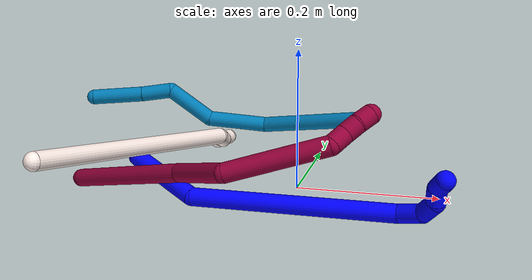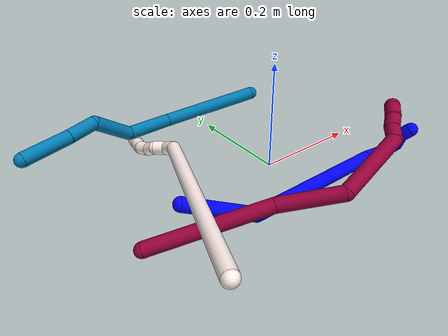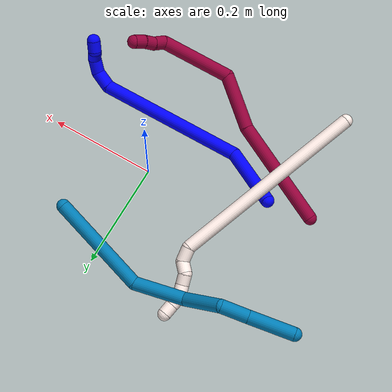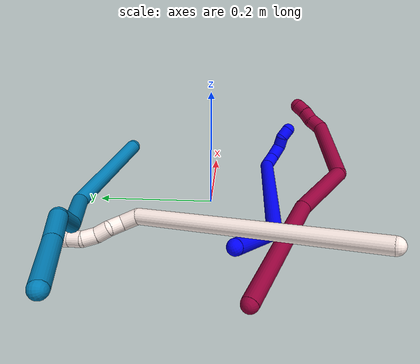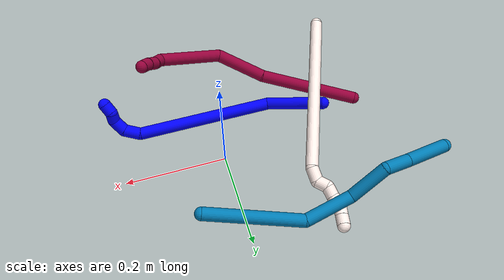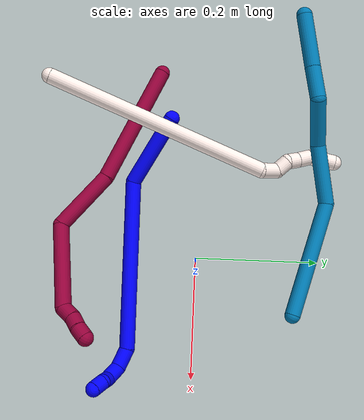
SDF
<sdf version="1.7">
 <world name="default">
  <model name="1">
   <static>0</static>
   <link name="1">
    <collision name="collision-cylinder-e_1_1_4">
     <pose>0.047107 0.006931 0.038579 -0.177769 0.876794 -0.083514</pose>
     <geometry><cylinder><radius>0.0125</radius><length>0.122563</length></cylinder></geometry>
     <surface>
      <friction><ode><mu>1.16</mu><mu2>1.16</mu2><slip1>0</slip1><slip2>0</slip2></ode></friction>
      <contact><ode><kp>1e+06</kp><kd>1</kd><max_vel>0</max_vel><min_depth>0.001</min_depth></ode></contact>
     </surface>
    </collision>
    <visual name="visual-cylinder-e_1_1_4">
     <pose>0.047107 0.006931 0.038579 -0.177769 0.876794 -0.083514</pose>
     <geometry><cylinder><radius>0.0125</radius><length>0.122563</length></cylinder></geometry>
     <material><ambient>0 0 1 1</ambient></material>
    </visual>
    <collision name="collision-cylinder-e_2_4_5">
     <pose>0.220745 -0.026907 0.110726 0.881973 1.17541 0.609327</pose>
     <geometry><cylinder><radius>0.0125</radius><length>0.27422</length></cylinder></geometry>
     <surface>
      <friction><ode><mu>1.16</mu><mu2>1.16</mu2><slip1>0</slip1><slip2>0</slip2></ode></friction>
      <contact><ode><kp>1e+06</kp><kd>1</kd><max_vel>0</max_vel><min_depth>0.001</min_depth></ode></contact>
     </surface>
    </collision>
    <visual name="visual-cylinder-e_2_4_5">
     <pose>0.220745 -0.026907 0.110726 0.881973 1.17541 0.609327</pose>
     <geometry><cylinder><radius>0.0125</radius><length>0.27422</length></cylinder></geometry>
     <material><ambient>0 0 1 1</ambient></material>
    </visual>
    <collision name="collision-cylinder-e_3_5_6">
     <pose>0.36348 -0.065157 0.147271 -0.702307 1.33463 -0.561995</pose>
     <geometry><cylinder><radius>0.0125</radius><length>0.033333</length></cylinder></geometry>
     <surface>
      <friction><ode><mu>1.16</mu><mu2>1.16</mu2><slip1>0</slip1><slip2>0</slip2></ode></friction>
      <contact><ode><kp>1e+06</kp><kd>1</kd><max_vel>0</max_vel><min_depth>0.001</min_depth></ode></contact>
     </surface>
    </collision>
    <visual name="visual-cylinder-e_3_5_6">
     <pose>0.36348 -0.065157 0.147271 -0.702307 1.33463 -0.561995</pose>
     <geometry><cylinder><radius>0.0125</radius><length>0.033333</length></cylinder></geometry>
     <material><ambient>0 0 1 1</ambient></material>
    </visual>
    <collision name="collision-cylinder-e_4_6_7">
     <pose>0.391347 -0.055327 0.146275 -2.06852 0.95111 -1.4273</pose>
     <geometry><cylinder><radius>0.0125</radius><length>0.028654</length></cylinder></geometry>
     <surface>
      <friction><ode><mu>1.16</mu><mu2>1.16</mu2><slip1>0</slip1><slip2>0</slip2></ode></friction>
      <contact><ode><kp>1e+06</kp><kd>1</kd><max_vel>0</max_vel><min_depth>0.001</min_depth></ode></contact>
     </surface>
    </collision>
    <visual name="visual-cylinder-e_4_6_7">
     <pose>0.391347 -0.055327 0.146275 -2.06852 0.95111 -1.4273</pose>
     <geometry><cylinder><radius>0.0125</radius><length>0.028654</length></cylinder></geometry>
     <material><ambient>0 0 1 1</ambient></material>
    </visual>
    <collision name="collision-cylinder-e_5_7_8">
     <pose>0.407182 -0.042884 0.134702 -2.54772 0.426946 -1.23275</pose>
     <geometry><cylinder><radius>0.0125</radius><length>0.020148</length></cylinder></geometry>
     <surface>
      <friction><ode><mu>1.16</mu><mu2>1.16</mu2><slip1>0</slip1><slip2>0</slip2></ode></friction>
      <contact><ode><kp>1e+06</kp><kd>1</kd><max_vel>0</max_vel><min_depth>0.001</min_depth></ode></contact>
     </surface>
    </collision>
    <visual name="visual-cylinder-e_5_7_8">
     <pose>0.407182 -0.042884 0.134702 -2.54772 0.426946 -1.23275</pose>
     <geometry><cylinder><radius>0.0125</radius><length>0.020148</length></cylinder></geometry>
     <material><ambient>0 0 1 1</ambient></material>
    </visual>
    <collision name="collision-cylinder-e_6_8_2">
     <pose>0.419088 -0.031178 0.124264 -1.97835 0.823856 -1.17305</pose>
     <geometry><cylinder><radius>0.0125</radius><length>0.021082</length></cylinder></geometry>
     <surface>
      <friction><ode><mu>1.16</mu><mu2>1.16</mu2><slip1>0</slip1><slip2>0</slip2></ode></friction>
      <contact><ode><kp>1e+06</kp><kd>1</kd><max_vel>0</max_vel><min_depth>0.001</min_depth></ode></contact>
     </surface>
    </collision>
    <visual name="visual-cylinder-e_6_8_2">
     <pose>0.419088 -0.031178 0.124264 -1.97835 0.823856 -1.17305</pose>
     <geometry><cylinder><radius>0.0125</radius><length>0.021082</length></cylinder></geometry>
     <material><ambient>0 0 1 1</ambient></material>
    </visual>
    <collision name="collision-sphere-2">
     <pose>0.426823 -0.024603 0.121426 0 -0 0</pose>
     <geometry><sphere><radius>0.0125</radius></sphere></geometry>
     <surface>
      <friction><ode><mu>1.16</mu><mu2>1.16</mu2><slip1>0</slip1><slip2>0</slip2></ode></friction>
      <contact><ode><kp>1e+06</kp><kd>1</kd><max_vel>0</max_vel><min_depth>0.001</min_depth></ode></contact>
     </surface>
    </collision>
    <visual name="visual-sphere-2">
     <pose>0.426823 -0.024603 0.121426 0 -0 0</pose>
     <geometry><sphere><radius>0.0125</radius></sphere></geometry>
     <material><ambient>0 0 1 1</ambient></material>
    </visual>
    <collision name="collision-sphere-4">
     <pose>0.094213 0.013863 0.077158 0 -0 0</pose>
     <geometry><sphere><radius>0.0125</radius></sphere></geometry>
     <surface>
      <friction><ode><mu>1.16</mu><mu2>1.16</mu2><slip1>0</slip1><slip2>0</slip2></ode></friction>
      <contact><ode><kp>1e+06</kp><kd>1</kd><max_vel>0</max_vel><min_depth>0.001</min_depth></ode></contact>
     </surface>
    </collision>
    <visual name="visual-sphere-4">
     <pose>0.094213 0.013863 0.077158 0 -0 0</pose>
     <geometry><sphere><radius>0.0125</radius></sphere></geometry>
     <material><ambient>0 0 1 1</ambient></material>
    </visual>
    <collision name="collision-sphere-1">
     <geometry><sphere><radius>0.0125</radius></sphere></geometry>
     <surface>
      <friction><ode><mu>1.16</mu><mu2>1.16</mu2><slip1>0</slip1><slip2>0</slip2></ode></friction>
      <contact><ode><kp>1e+06</kp><kd>1</kd><max_vel>0</max_vel><min_depth>0.001</min_depth></ode></contact>
     </surface>
    </collision>
    <visual name="visual-sphere-1">
     <geometry><sphere><radius>0.0125</radius></sphere></geometry>
     <material><ambient>0 0 1 1</ambient></material>
    </visual>
    <collision name="collision-sphere-8">
     <pose>0.411353 -0.037753 0.127103 0 -0 0</pose>
     <geometry><sphere><radius>0.0125</radius></sphere></geometry>
     <surface>
      <friction><ode><mu>1.16</mu><mu2>1.16</mu2><slip1>0</slip1><slip2>0</slip2></ode></friction>
      <contact><ode><kp>1e+06</kp><kd>1</kd><max_vel>0</max_vel><min_depth>0.001</min_depth></ode></contact>
     </surface>
    </collision>
    <visual name="visual-sphere-8">
     <pose>0.411353 -0.037753 0.127103 0 -0 0</pose>
     <geometry><sphere><radius>0.0125</radius></sphere></geometry>
     <material><ambient>0 0 1 1</ambient></material>
    </visual>
    <collision name="collision-sphere-5">
     <pose>0.347276 -0.067676 0.144294 0 -0 0</pose>
     <geometry><sphere><radius>0.0125</radius></sphere></geometry>
     <surface>
      <friction><ode><mu>1.16</mu><mu2>1.16</mu2><slip1>0</slip1><slip2>0</slip2></ode></friction>
      <contact><ode><kp>1e+06</kp><kd>1</kd><max_vel>0</max_vel><min_depth>0.001</min_depth></ode></contact>
     </surface>
    </collision>
    <visual name="visual-sphere-5">
     <pose>0.347276 -0.067676 0.144294 0 -0 0</pose>
     <geometry><sphere><radius>0.0125</radius></sphere></geometry>
     <material><ambient>0 0 1 1</ambient></material>
    </visual>
    <collision name="collision-sphere-6">
     <pose>0.379684 -0.062638 0.150247 0 -0 0</pose>
     <geometry><sphere><radius>0.0125</radius></sphere></geometry>
     <surface>
      <friction><ode><mu>1.16</mu><mu2>1.16</mu2><slip1>0</slip1><slip2>0</slip2></ode></friction>
      <contact><ode><kp>1e+06</kp><kd>1</kd><max_vel>0</max_vel><min_depth>0.001</min_depth></ode></contact>
     </surface>
    </collision>
    <visual name="visual-sphere-6">
     <pose>0.379684 -0.062638 0.150247 0 -0 0</pose>
     <geometry><sphere><radius>0.0125</radius></sphere></geometry>
     <material><ambient>0 0 1 1</ambient></material>
    </visual>
    <collision name="collision-sphere-7">
     <pose>0.40301 -0.048015 0.142302 0 -0 0</pose>
     <geometry><sphere><radius>0.0125</radius></sphere></geometry>
     <surface>
      <friction><ode><mu>1.16</mu><mu2>1.16</mu2><slip1>0</slip1><slip2>0</slip2></ode></friction>
      <contact><ode><kp>1e+06</kp><kd>1</kd><max_vel>0</max_vel><min_depth>0.001</min_depth></ode></contact>
     </surface>
    </collision>
    <visual name="visual-sphere-7">
     <pose>0.40301 -0.048015 0.142302 0 -0 0</pose>
     <geometry><sphere><radius>0.0125</radius></sphere></geometry>
     <material><ambient>0 0 1 1</ambient></material>
    </visual>
    <inertial>
     <pose>0.21335 -0.023615 0.099051 0 -0 0</pose>
     <mass>0.5</mass>
     <inertia>
      <ixx>0.00105</ixx>
      <ixy>0</ixy>
      <ixz>0</ixz>
      <iyy>0.002136</iyy>
      <iyz>0</iyz>
      <izz>-0.001224</izz>
     </inertia>
    </inertial>
   </link>
   <pose>-0.224699 -0.046799 0.043537 2.79501 -0.34463 -0.195182</pose>
  </model>
  <model name="8">
   <static>0</static>
   <link name="8">
    <collision name="collision-cylinder-e_1_1_4">
     <pose>0.031173 -0.009199 -0.09532 3.04539 0.314701 2.55244</pose>
     <geometry><cylinder><radius>0.0125</radius><length>0.201418</length></cylinder></geometry>
     <surface>
      <friction><ode><mu>1.16</mu><mu2>1.16</mu2><slip1>0</slip1><slip2>0</slip2></ode></friction>
      <contact><ode><kp>1e+06</kp><kd>1</kd><max_vel>0</max_vel><min_depth>0.001</min_depth></ode></contact>
     </surface>
    </collision>
    <visual name="visual-cylinder-e_1_1_4">
     <pose>0.031173 -0.009199 -0.09532 3.04539 0.314701 2.55244</pose>
     <geometry><cylinder><radius>0.0125</radius><length>0.201418</length></cylinder></geometry>
     <material><ambient>0.584314 0 0.227451 1</ambient></material>
    </visual>
    <collision name="collision-cylinder-e_2_4_5">
     <pose>0.073795 -0.03567 -0.238079 2.79241 0.223012 1.13122</pose>
     <geometry><cylinder><radius>0.0125</radius><length>0.103535</length></cylinder></geometry>
     <surface>
      <friction><ode><mu>1.16</mu><mu2>1.16</mu2><slip1>0</slip1><slip2>0</slip2></ode></friction>
      <contact><ode><kp>1e+06</kp><kd>1</kd><max_vel>0</max_vel><min_depth>0.001</min_depth></ode></contact>
     </surface>
    </collision>
    <visual name="visual-cylinder-e_2_4_5">
     <pose>0.073795 -0.03567 -0.238079 2.79241 0.223012 1.13122</pose>
     <geometry><cylinder><radius>0.0125</radius><length>0.103535</length></cylinder></geometry>
     <material><ambient>0.584314 0 0.227451 1</ambient></material>
    </visual>
    <collision name="collision-cylinder-e_3_5_6">
     <pose>0.121062 -0.030663 -0.335849 -2.72485 0.576904 -1.90336</pose>
     <geometry><cylinder><radius>0.0125</radius><length>0.131339</length></cylinder></geometry>
     <surface>
      <friction><ode><mu>1.16</mu><mu2>1.16</mu2><slip1>0</slip1><slip2>0</slip2></ode></friction>
      <contact><ode><kp>1e+06</kp><kd>1</kd><max_vel>0</max_vel><min_depth>0.001</min_depth></ode></contact>
     </surface>
    </collision>
    <visual name="visual-cylinder-e_3_5_6">
     <pose>0.121062 -0.030663 -0.335849 -2.72485 0.576904 -1.90336</pose>
     <geometry><cylinder><radius>0.0125</radius><length>0.131339</length></cylinder></geometry>
     <material><ambient>0.584314 0 0.227451 1</ambient></material>
    </visual>
    <collision name="collision-cylinder-e_4_6_7">
     <pose>0.165745 -0.001096 -0.387745 -1.78252 0.871611 -1.04576</pose>
     <geometry><cylinder><radius>0.0125</radius><length>0.023163</length></cylinder></geometry>
     <surface>
      <friction><ode><mu>1.16</mu><mu2>1.16</mu2><slip1>0</slip1><slip2>0</slip2></ode></friction>
      <contact><ode><kp>1e+06</kp><kd>1</kd><max_vel>0</max_vel><min_depth>0.001</min_depth></ode></contact>
     </surface>
    </collision>
    <visual name="visual-cylinder-e_4_6_7">
     <pose>0.165745 -0.001096 -0.387745 -1.78252 0.871611 -1.04576</pose>
     <geometry><cylinder><radius>0.0125</radius><length>0.023163</length></cylinder></geometry>
     <material><ambient>0.584314 0 0.227451 1</ambient></material>
    </visual>
    <collision name="collision-cylinder-e_5_7_8">
     <pose>0.182938 0.010748 -0.392597 -2.19543 0.977458 -1.60895</pose>
     <geometry><cylinder><radius>0.0125</radius><length>0.020094</length></cylinder></geometry>
     <surface>
      <friction><ode><mu>1.16</mu><mu2>1.16</mu2><slip1>0</slip1><slip2>0</slip2></ode></friction>
      <contact><ode><kp>1e+06</kp><kd>1</kd><max_vel>0</max_vel><min_depth>0.001</min_depth></ode></contact>
     </surface>
    </collision>
    <visual name="visual-cylinder-e_5_7_8">
     <pose>0.182938 0.010748 -0.392597 -2.19543 0.977458 -1.60895</pose>
     <geometry><cylinder><radius>0.0125</radius><length>0.020094</length></cylinder></geometry>
     <material><ambient>0.584314 0 0.227451 1</ambient></material>
    </visual>
    <collision name="collision-cylinder-e_6_8_2">
     <pose>0.19895 0.021529 -0.398492 -1.96792 0.85 -1.19516</pose>
     <geometry><cylinder><radius>0.0125</radius><length>0.020451</length></cylinder></geometry>
     <surface>
      <friction><ode><mu>1.16</mu><mu2>1.16</mu2><slip1>0</slip1><slip2>0</slip2></ode></friction>
      <contact><ode><kp>1e+06</kp><kd>1</kd><max_vel>0</max_vel><min_depth>0.001</min_depth></ode></contact>
     </surface>
    </collision>
    <visual name="visual-cylinder-e_6_8_2">
     <pose>0.19895 0.021529 -0.398492 -1.96792 0.85 -1.19516</pose>
     <geometry><cylinder><radius>0.0125</radius><length>0.020451</length></cylinder></geometry>
     <material><ambient>0.584314 0 0.227451 1</ambient></material>
    </visual>
    <collision name="collision-sphere-2">
     <pose>0.206633 0.027752 -0.401102 0 -0 0</pose>
     <geometry><sphere><radius>0.0125</radius></sphere></geometry>
     <surface>
      <friction><ode><mu>1.16</mu><mu2>1.16</mu2><slip1>0</slip1><slip2>0</slip2></ode></friction>
      <contact><ode><kp>1e+06</kp><kd>1</kd><max_vel>0</max_vel><min_depth>0.001</min_depth></ode></contact>
     </surface>
    </collision>
    <visual name="visual-sphere-2">
     <pose>0.206633 0.027752 -0.401102 0 -0 0</pose>
     <geometry><sphere><radius>0.0125</radius></sphere></geometry>
     <material><ambient>0.584314 0 0.227451 1</ambient></material>
    </visual>
    <collision name="collision-sphere-4">
     <pose>0.062345 -0.018397 -0.190641 0 -0 0</pose>
     <geometry><sphere><radius>0.0125</radius></sphere></geometry>
     <surface>
      <friction><ode><mu>1.16</mu><mu2>1.16</mu2><slip1>0</slip1><slip2>0</slip2></ode></friction>
      <contact><ode><kp>1e+06</kp><kd>1</kd><max_vel>0</max_vel><min_depth>0.001</min_depth></ode></contact>
     </surface>
    </collision>
    <visual name="visual-sphere-4">
     <pose>0.062345 -0.018397 -0.190641 0 -0 0</pose>
     <geometry><sphere><radius>0.0125</radius></sphere></geometry>
     <material><ambient>0.584314 0 0.227451 1</ambient></material>
    </visual>
    <collision name="collision-sphere-1">
     <geometry><sphere><radius>0.0125</radius></sphere></geometry>
     <surface>
      <friction><ode><mu>1.16</mu><mu2>1.16</mu2><slip1>0</slip1><slip2>0</slip2></ode></friction>
      <contact><ode><kp>1e+06</kp><kd>1</kd><max_vel>0</max_vel><min_depth>0.001</min_depth></ode></contact>
     </surface>
    </collision>
    <visual name="visual-sphere-1">
     <geometry><sphere><radius>0.0125</radius></sphere></geometry>
     <material><ambient>0.584314 0 0.227451 1</ambient></material>
    </visual>
    <collision name="collision-sphere-8">
     <pose>0.191268 0.015305 -0.395882 0 -0 0</pose>
     <geometry><sphere><radius>0.0125</radius></sphere></geometry>
     <surface>
      <friction><ode><mu>1.16</mu><mu2>1.16</mu2><slip1>0</slip1><slip2>0</slip2></ode></friction>
      <contact><ode><kp>1e+06</kp><kd>1</kd><max_vel>0</max_vel><min_depth>0.001</min_depth></ode></contact>
     </surface>
    </collision>
    <visual name="visual-sphere-8">
     <pose>0.191268 0.015305 -0.395882 0 -0 0</pose>
     <geometry><sphere><radius>0.0125</radius></sphere></geometry>
     <material><ambient>0.584314 0 0.227451 1</ambient></material>
    </visual>
    <collision name="collision-sphere-5">
     <pose>0.085244 -0.052943 -0.285518 0 -0 0</pose>
     <geometry><sphere><radius>0.0125</radius></sphere></geometry>
     <surface>
      <friction><ode><mu>1.16</mu><mu2>1.16</mu2><slip1>0</slip1><slip2>0</slip2></ode></friction>
      <contact><ode><kp>1e+06</kp><kd>1</kd><max_vel>0</max_vel><min_depth>0.001</min_depth></ode></contact>
     </surface>
    </collision>
    <visual name="visual-sphere-5">
     <pose>0.085244 -0.052943 -0.285518 0 -0 0</pose>
     <geometry><sphere><radius>0.0125</radius></sphere></geometry>
     <material><ambient>0.584314 0 0.227451 1</ambient></material>
    </visual>
    <collision name="collision-sphere-6">
     <pose>0.156881 -0.008383 -0.386179 0 -0 0</pose>
     <geometry><sphere><radius>0.0125</radius></sphere></geometry>
     <surface>
      <friction><ode><mu>1.16</mu><mu2>1.16</mu2><slip1>0</slip1><slip2>0</slip2></ode></friction>
      <contact><ode><kp>1e+06</kp><kd>1</kd><max_vel>0</max_vel><min_depth>0.001</min_depth></ode></contact>
     </surface>
    </collision>
    <visual name="visual-sphere-6">
     <pose>0.156881 -0.008383 -0.386179 0 -0 0</pose>
     <geometry><sphere><radius>0.0125</radius></sphere></geometry>
     <material><ambient>0.584314 0 0.227451 1</ambient></material>
    </visual>
    <collision name="collision-sphere-7">
     <pose>0.174609 0.006192 -0.389312 0 -0 0</pose>
     <geometry><sphere><radius>0.0125</radius></sphere></geometry>
     <surface>
      <friction><ode><mu>1.16</mu><mu2>1.16</mu2><slip1>0</slip1><slip2>0</slip2></ode></friction>
      <contact><ode><kp>1e+06</kp><kd>1</kd><max_vel>0</max_vel><min_depth>0.001</min_depth></ode></contact>
     </surface>
    </collision>
    <visual name="visual-sphere-7">
     <pose>0.174609 0.006192 -0.389312 0 -0 0</pose>
     <geometry><sphere><radius>0.0125</radius></sphere></geometry>
     <material><ambient>0.584314 0 0.227451 1</ambient></material>
    </visual>
    <inertial>
     <pose>0.082806 -0.017884 -0.225957 0 -0 0</pose>
     <mass>0.5</mass>
     <inertia>
      <ixx>-0.000248</ixx>
      <ixy>0</ixy>
      <ixz>0</ixz>
      <iyy>0.000945</iyy>
      <iyz>0</iyz>
      <izz>-0.000349</izz>
     </inertia>
    </inertial>
   </link>
   <pose>-0.304114 -0.066862 0.012263 -1.30053 -1.16017 0.866216</pose>
  </model>
  <model name="9">
   <static>0</static>
   <link name="9">
    <collision name="collision-cylinder-e_1_1_4">
     <pose>0.03717 -0.003041 0.020386 0.148067 1.0645 0.087307</pose>
     <geometry><cylinder><radius>0.0125</radius><length>0.085005</length></cylinder></geometry>
     <surface>
      <friction><ode><mu>1.16</mu><mu2>1.16</mu2><slip1>0</slip1><slip2>0</slip2></ode></friction>
      <contact><ode><kp>1e+06</kp><kd>1</kd><max_vel>0</max_vel><min_depth>0.001</min_depth></ode></contact>
     </surface>
    </collision>
    <visual name="visual-cylinder-e_1_1_4">
     <pose>0.03717 -0.003041 0.020386 0.148067 1.0645 0.087307</pose>
     <geometry><cylinder><radius>0.0125</radius><length>0.085005</length></cylinder></geometry>
     <material><ambient>0 0.490196 0.709804 1</ambient></material>
    </visual>
    <collision name="collision-cylinder-e_2_4_5">
     <pose>0.096372 -0.00944 0.052443 0.280214 1.06698 0.166206</pose>
     <geometry><cylinder><radius>0.0125</radius><length>0.050314</length></cylinder></geometry>
     <surface>
      <friction><ode><mu>1.16</mu><mu2>1.16</mu2><slip1>0</slip1><slip2>0</slip2></ode></friction>
      <contact><ode><kp>1e+06</kp><kd>1</kd><max_vel>0</max_vel><min_depth>0.001</min_depth></ode></contact>
     </surface>
    </collision>
    <visual name="visual-cylinder-e_2_4_5">
     <pose>0.096372 -0.00944 0.052443 0.280214 1.06698 0.166206</pose>
     <geometry><cylinder><radius>0.0125</radius><length>0.050314</length></cylinder></geometry>
     <material><ambient>0 0.490196 0.709804 1</ambient></material>
    </visual>
    <collision name="collision-cylinder-e_3_5_6">
     <pose>0.144057 0.010373 0.085536 -0.824644 0.682588 -0.308255</pose>
     <geometry><cylinder><radius>0.0125</radius><length>0.081338</length></cylinder></geometry>
     <surface>
      <friction><ode><mu>1.16</mu><mu2>1.16</mu2><slip1>0</slip1><slip2>0</slip2></ode></friction>
      <contact><ode><kp>1e+06</kp><kd>1</kd><max_vel>0</max_vel><min_depth>0.001</min_depth></ode></contact>
     </surface>
    </collision>
    <visual name="visual-cylinder-e_3_5_6">
     <pose>0.144057 0.010373 0.085536 -0.824644 0.682588 -0.308255</pose>
     <geometry><cylinder><radius>0.0125</radius><length>0.081338</length></cylinder></geometry>
     <material><ambient>0 0.490196 0.709804 1</ambient></material>
    </visual>
    <collision name="collision-cylinder-e_4_6_7">
     <pose>0.210234 0.037914 0.132594 -0.168801 1.00023 -0.092395</pose>
     <geometry><cylinder><radius>0.0125</radius><length>0.0963</length></cylinder></geometry>
     <surface>
      <friction><ode><mu>1.16</mu><mu2>1.16</mu2><slip1>0</slip1><slip2>0</slip2></ode></friction>
      <contact><ode><kp>1e+06</kp><kd>1</kd><max_vel>0</max_vel><min_depth>0.001</min_depth></ode></contact>
     </surface>
    </collision>
    <visual name="visual-cylinder-e_4_6_7">
     <pose>0.210234 0.037914 0.132594 -0.168801 1.00023 -0.092395</pose>
     <geometry><cylinder><radius>0.0125</radius><length>0.0963</length></cylinder></geometry>
     <material><ambient>0 0.490196 0.709804 1</ambient></material>
    </visual>
    <collision name="collision-cylinder-e_5_7_2">
     <pose>0.344177 0.039826 0.161832 0.598714 1.52416 0.572926</pose>
     <geometry><cylinder><radius>0.0125</radius><length>0.187043</length></cylinder></geometry>
     <surface>
      <friction><ode><mu>1.16</mu><mu2>1.16</mu2><slip1>0</slip1><slip2>0</slip2></ode></friction>
      <contact><ode><kp>1e+06</kp><kd>1</kd><max_vel>0</max_vel><min_depth>0.001</min_depth></ode></contact>
     </surface>
    </collision>
    <visual name="visual-cylinder-e_5_7_2">
     <pose>0.344177 0.039826 0.161832 0.598714 1.52416 0.572926</pose>
     <geometry><cylinder><radius>0.0125</radius><length>0.187043</length></cylinder></geometry>
     <material><ambient>0 0.490196 0.709804 1</ambient></material>
    </visual>
    <collision name="collision-sphere-2">
     <pose>0.437596 0.03737 0.165433 0 -0 0</pose>
     <geometry><sphere><radius>0.0125</radius></sphere></geometry>
     <surface>
      <friction><ode><mu>1.16</mu><mu2>1.16</mu2><slip1>0</slip1><slip2>0</slip2></ode></friction>
      <contact><ode><kp>1e+06</kp><kd>1</kd><max_vel>0</max_vel><min_depth>0.001</min_depth></ode></contact>
     </surface>
    </collision>
    <visual name="visual-sphere-2">
     <pose>0.437596 0.03737 0.165433 0 -0 0</pose>
     <geometry><sphere><radius>0.0125</radius></sphere></geometry>
     <material><ambient>0 0.490196 0.709804 1</ambient></material>
    </visual>
    <collision name="collision-sphere-7">
     <pose>0.250757 0.042283 0.158231 0 -0 0</pose>
     <geometry><sphere><radius>0.0125</radius></sphere></geometry>
     <surface>
      <friction><ode><mu>1.16</mu><mu2>1.16</mu2><slip1>0</slip1><slip2>0</slip2></ode></friction>
      <contact><ode><kp>1e+06</kp><kd>1</kd><max_vel>0</max_vel><min_depth>0.001</min_depth></ode></contact>
     </surface>
    </collision>
    <visual name="visual-sphere-7">
     <pose>0.250757 0.042283 0.158231 0 -0 0</pose>
     <geometry><sphere><radius>0.0125</radius></sphere></geometry>
     <material><ambient>0 0.490196 0.709804 1</ambient></material>
    </visual>
    <collision name="collision-sphere-6">
     <pose>0.169711 0.033545 0.106957 0 -0 0</pose>
     <geometry><sphere><radius>0.0125</radius></sphere></geometry>
     <surface>
      <friction><ode><mu>1.16</mu><mu2>1.16</mu2><slip1>0</slip1><slip2>0</slip2></ode></friction>
      <contact><ode><kp>1e+06</kp><kd>1</kd><max_vel>0</max_vel><min_depth>0.001</min_depth></ode></contact>
     </surface>
    </collision>
    <visual name="visual-sphere-6">
     <pose>0.169711 0.033545 0.106957 0 -0 0</pose>
     <geometry><sphere><radius>0.0125</radius></sphere></geometry>
     <material><ambient>0 0.490196 0.709804 1</ambient></material>
    </visual>
    <collision name="collision-sphere-5">
     <pose>0.118403 -0.012799 0.064115 0 -0 0</pose>
     <geometry><sphere><radius>0.0125</radius></sphere></geometry>
     <surface>
      <friction><ode><mu>1.16</mu><mu2>1.16</mu2><slip1>0</slip1><slip2>0</slip2></ode></friction>
      <contact><ode><kp>1e+06</kp><kd>1</kd><max_vel>0</max_vel><min_depth>0.001</min_depth></ode></contact>
     </surface>
    </collision>
    <visual name="visual-sphere-5">
     <pose>0.118403 -0.012799 0.064115 0 -0 0</pose>
     <geometry><sphere><radius>0.0125</radius></sphere></geometry>
     <material><ambient>0 0.490196 0.709804 1</ambient></material>
    </visual>
    <collision name="collision-sphere-1">
     <geometry><sphere><radius>0.0125</radius></sphere></geometry>
     <surface>
      <friction><ode><mu>1.16</mu><mu2>1.16</mu2><slip1>0</slip1><slip2>0</slip2></ode></friction>
      <contact><ode><kp>1e+06</kp><kd>1</kd><max_vel>0</max_vel><min_depth>0.001</min_depth></ode></contact>
     </surface>
    </collision>
    <visual name="visual-sphere-1">
     <geometry><sphere><radius>0.0125</radius></sphere></geometry>
     <material><ambient>0 0.490196 0.709804 1</ambient></material>
    </visual>
    <collision name="collision-sphere-4">
     <pose>0.074341 -0.006081 0.040772 0 -0 0</pose>
     <geometry><sphere><radius>0.0125</radius></sphere></geometry>
     <surface>
      <friction><ode><mu>1.16</mu><mu2>1.16</mu2><slip1>0</slip1><slip2>0</slip2></ode></friction>
      <contact><ode><kp>1e+06</kp><kd>1</kd><max_vel>0</max_vel><min_depth>0.001</min_depth></ode></contact>
     </surface>
    </collision>
    <visual name="visual-sphere-4">
     <pose>0.074341 -0.006081 0.040772 0 -0 0</pose>
     <geometry><sphere><radius>0.0125</radius></sphere></geometry>
     <material><ambient>0 0.490196 0.709804 1</ambient></material>
    </visual>
    <inertial>
     <pose>0.208694 0.022421 0.108734 0 -0 0</pose>
     <mass>0.5</mass>
     <inertia>
      <ixx>0.000168</ixx>
      <ixy>0</ixy>
      <ixz>0</ixz>
      <iyy>0.00074</iyy>
      <iyz>0</iyz>
      <izz>-0.000708</izz>
     </inertia>
    </inertial>
   </link>
   <pose>-0.388416 0.155222 0.085025 -1.82703 -0.147384 -0.328275</pose>
  </model>
  <model name="11">
   <static>0</static>
   <link name="11">
    <collision name="collision-cylinder-e_1_1_4">
     <pose>0.006393 0.000707 -0.183071 -3.13773 0.034907 -2.92129</pose>
     <geometry><cylinder><radius>0.0125</radius><length>0.366368</length></cylinder></geometry>
     <surface>
      <friction><ode><mu>1.16</mu><mu2>1.16</mu2><slip1>0</slip1><slip2>0</slip2></ode></friction>
      <contact><ode><kp>1e+06</kp><kd>1</kd><max_vel>0</max_vel><min_depth>0.001</min_depth></ode></contact>
     </surface>
    </collision>
    <visual name="visual-cylinder-e_1_1_4">
     <pose>0.006393 0.000707 -0.183071 -3.13773 0.034907 -2.92129</pose>
     <geometry><cylinder><radius>0.0125</radius><length>0.366368</length></cylinder></geometry>
     <material><ambient>1 0.933333 0.909804 1</ambient></material>
    </visual>
    <collision name="collision-cylinder-e_2_4_5">
     <pose>0.010576 0.007961 -0.378166 -2.64296 -0.160081 0.610383</pose>
     <geometry><cylinder><radius>0.0125</radius><length>0.027737</length></cylinder></geometry>
     <surface>
      <friction><ode><mu>1.16</mu><mu2>1.16</mu2><slip1>0</slip1><slip2>0</slip2></ode></friction>
      <contact><ode><kp>1e+06</kp><kd>1</kd><max_vel>0</max_vel><min_depth>0.001</min_depth></ode></contact>
     </surface>
    </collision>
    <visual name="visual-cylinder-e_2_4_5">
     <pose>0.010576 0.007961 -0.378166 -2.64296 -0.160081 0.610383</pose>
     <geometry><cylinder><radius>0.0125</radius><length>0.027737</length></cylinder></geometry>
     <material><ambient>1 0.933333 0.909804 1</ambient></material>
    </visual>
    <collision name="collision-cylinder-e_3_5_6">
     <pose>0.011378 0.024292 -0.395079 -2.03418 0.268818 -0.430683</pose>
     <geometry><cylinder><radius>0.0125</radius><length>0.022689</length></cylinder></geometry>
     <surface>
      <friction><ode><mu>1.16</mu><mu2>1.16</mu2><slip1>0</slip1><slip2>0</slip2></ode></friction>
      <contact><ode><kp>1e+06</kp><kd>1</kd><max_vel>0</max_vel><min_depth>0.001</min_depth></ode></contact>
     </surface>
    </collision>
    <visual name="visual-cylinder-e_3_5_6">
     <pose>0.011378 0.024292 -0.395079 -2.03418 0.268818 -0.430683</pose>
     <geometry><cylinder><radius>0.0125</radius><length>0.022689</length></cylinder></geometry>
     <material><ambient>1 0.933333 0.909804 1</ambient></material>
    </visual>
    <collision name="collision-cylinder-e_4_6_7">
     <pose>0.012514 0.040302 -0.408115 -2.48913 -0.181094 0.524389</pose>
     <geometry><cylinder><radius>0.0125</radius><length>0.020849</length></cylinder></geometry>
     <surface>
      <friction><ode><mu>1.16</mu><mu2>1.16</mu2><slip1>0</slip1><slip2>0</slip2></ode></friction>
      <contact><ode><kp>1e+06</kp><kd>1</kd><max_vel>0</max_vel><min_depth>0.001</min_depth></ode></contact>
     </surface>
    </collision>
    <visual name="visual-cylinder-e_4_6_7">
     <pose>0.012514 0.040302 -0.408115 -2.48913 -0.181094 0.524389</pose>
     <geometry><cylinder><radius>0.0125</radius><length>0.020849</length></cylinder></geometry>
     <material><ambient>1 0.933333 0.909804 1</ambient></material>
    </visual>
    <collision name="collision-cylinder-e_5_7_8">
     <pose>0.011854 0.053077 -0.424851 -2.49004 0.112301 -0.329764</pose>
     <geometry><cylinder><radius>0.0125</radius><length>0.021739</length></cylinder></geometry>
     <surface>
      <friction><ode><mu>1.16</mu><mu2>1.16</mu2><slip1>0</slip1><slip2>0</slip2></ode></friction>
      <contact><ode><kp>1e+06</kp><kd>1</kd><max_vel>0</max_vel><min_depth>0.001</min_depth></ode></contact>
     </surface>
    </collision>
    <visual name="visual-cylinder-e_5_7_8">
     <pose>0.011854 0.053077 -0.424851 -2.49004 0.112301 -0.329764</pose>
     <geometry><cylinder><radius>0.0125</radius><length>0.021739</length></cylinder></geometry>
     <material><ambient>1 0.933333 0.909804 1</ambient></material>
    </visual>
    <collision name="collision-cylinder-e_6_8_9">
     <pose>0.013993 0.061502 -0.443514 -2.95757 0.089616 -0.904653</pose>
     <geometry><cylinder><radius>0.0125</radius><length>0.020578</length></cylinder></geometry>
     <surface>
      <friction><ode><mu>1.16</mu><mu2>1.16</mu2><slip1>0</slip1><slip2>0</slip2></ode></friction>
      <contact><ode><kp>1e+06</kp><kd>1</kd><max_vel>0</max_vel><min_depth>0.001</min_depth></ode></contact>
     </surface>
    </collision>
    <visual name="visual-cylinder-e_6_8_9">
     <pose>0.013993 0.061502 -0.443514 -2.95757 0.089616 -0.904653</pose>
     <geometry><cylinder><radius>0.0125</radius><length>0.020578</length></cylinder></geometry>
     <material><ambient>1 0.933333 0.909804 1</ambient></material>
    </visual>
    <collision name="collision-cylinder-e_7_9_2">
     <pose>0.015962 0.065185 -0.463389 -2.95919 0.104797 -1.04138</pose>
     <geometry><cylinder><radius>0.0125</radius><length>0.02004</length></cylinder></geometry>
     <surface>
      <friction><ode><mu>1.16</mu><mu2>1.16</mu2><slip1>0</slip1><slip2>0</slip2></ode></friction>
      <contact><ode><kp>1e+06</kp><kd>1</kd><max_vel>0</max_vel><min_depth>0.001</min_depth></ode></contact>
     </surface>
    </collision>
    <visual name="visual-cylinder-e_7_9_2">
     <pose>0.015962 0.065185 -0.463389 -2.95919 0.104797 -1.04138</pose>
     <geometry><cylinder><radius>0.0125</radius><length>0.02004</length></cylinder></geometry>
     <material><ambient>1 0.933333 0.909804 1</ambient></material>
    </visual>
    <collision name="collision-sphere-2">
     <pose>0.01701 0.066993 -0.473189 0 -0 0</pose>
     <geometry><sphere><radius>0.0125</radius></sphere></geometry>
     <surface>
      <friction><ode><mu>1.16</mu><mu2>1.16</mu2><slip1>0</slip1><slip2>0</slip2></ode></friction>
      <contact><ode><kp>1e+06</kp><kd>1</kd><max_vel>0</max_vel><min_depth>0.001</min_depth></ode></contact>
     </surface>
    </collision>
    <visual name="visual-sphere-2">
     <pose>0.01701 0.066993 -0.473189 0 -0 0</pose>
     <geometry><sphere><radius>0.0125</radius></sphere></geometry>
     <material><ambient>1 0.933333 0.909804 1</ambient></material>
    </visual>
    <collision name="collision-sphere-9">
     <pose>0.014914 0.063378 -0.453589 0 -0 0</pose>
     <geometry><sphere><radius>0.0125</radius></sphere></geometry>
     <surface>
      <friction><ode><mu>1.16</mu><mu2>1.16</mu2><slip1>0</slip1><slip2>0</slip2></ode></friction>
      <contact><ode><kp>1e+06</kp><kd>1</kd><max_vel>0</max_vel><min_depth>0.001</min_depth></ode></contact>
     </surface>
    </collision>
    <visual name="visual-sphere-9">
     <pose>0.014914 0.063378 -0.453589 0 -0 0</pose>
     <geometry><sphere><radius>0.0125</radius></sphere></geometry>
     <material><ambient>1 0.933333 0.909804 1</ambient></material>
    </visual>
    <collision name="collision-sphere-4">
     <pose>0.012786 0.001414 -0.366142 0 -0 0</pose>
     <geometry><sphere><radius>0.0125</radius></sphere></geometry>
     <surface>
      <friction><ode><mu>1.16</mu><mu2>1.16</mu2><slip1>0</slip1><slip2>0</slip2></ode></friction>
      <contact><ode><kp>1e+06</kp><kd>1</kd><max_vel>0</max_vel><min_depth>0.001</min_depth></ode></contact>
     </surface>
    </collision>
    <visual name="visual-sphere-4">
     <pose>0.012786 0.001414 -0.366142 0 -0 0</pose>
     <geometry><sphere><radius>0.0125</radius></sphere></geometry>
     <material><ambient>1 0.933333 0.909804 1</ambient></material>
    </visual>
    <collision name="collision-sphere-1">
     <geometry><sphere><radius>0.0125</radius></sphere></geometry>
     <surface>
      <friction><ode><mu>1.16</mu><mu2>1.16</mu2><slip1>0</slip1><slip2>0</slip2></ode></friction>
      <contact><ode><kp>1e+06</kp><kd>1</kd><max_vel>0</max_vel><min_depth>0.001</min_depth></ode></contact>
     </surface>
    </collision>
    <visual name="visual-sphere-1">
     <geometry><sphere><radius>0.0125</radius></sphere></geometry>
     <material><ambient>1 0.933333 0.909804 1</ambient></material>
    </visual>
    <collision name="collision-sphere-8">
     <pose>0.013072 0.059627 -0.43344 0 -0 0</pose>
     <geometry><sphere><radius>0.0125</radius></sphere></geometry>
     <surface>
      <friction><ode><mu>1.16</mu><mu2>1.16</mu2><slip1>0</slip1><slip2>0</slip2></ode></friction>
      <contact><ode><kp>1e+06</kp><kd>1</kd><max_vel>0</max_vel><min_depth>0.001</min_depth></ode></contact>
     </surface>
    </collision>
    <visual name="visual-sphere-8">
     <pose>0.013072 0.059627 -0.43344 0 -0 0</pose>
     <geometry><sphere><radius>0.0125</radius></sphere></geometry>
     <material><ambient>1 0.933333 0.909804 1</ambient></material>
    </visual>
    <collision name="collision-sphere-5">
     <pose>0.008365 0.014509 -0.390191 0 -0 0</pose>
     <geometry><sphere><radius>0.0125</radius></sphere></geometry>
     <surface>
      <friction><ode><mu>1.16</mu><mu2>1.16</mu2><slip1>0</slip1><slip2>0</slip2></ode></friction>
      <contact><ode><kp>1e+06</kp><kd>1</kd><max_vel>0</max_vel><min_depth>0.001</min_depth></ode></contact>
     </surface>
    </collision>
    <visual name="visual-sphere-5">
     <pose>0.008365 0.014509 -0.390191 0 -0 0</pose>
     <geometry><sphere><radius>0.0125</radius></sphere></geometry>
     <material><ambient>1 0.933333 0.909804 1</ambient></material>
    </visual>
    <collision name="collision-sphere-6">
     <pose>0.014391 0.034076 -0.399968 0 -0 0</pose>
     <geometry><sphere><radius>0.0125</radius></sphere></geometry>
     <surface>
      <friction><ode><mu>1.16</mu><mu2>1.16</mu2><slip1>0</slip1><slip2>0</slip2></ode></friction>
      <contact><ode><kp>1e+06</kp><kd>1</kd><max_vel>0</max_vel><min_depth>0.001</min_depth></ode></contact>
     </surface>
    </collision>
    <visual name="visual-sphere-6">
     <pose>0.014391 0.034076 -0.399968 0 -0 0</pose>
     <geometry><sphere><radius>0.0125</radius></sphere></geometry>
     <material><ambient>1 0.933333 0.909804 1</ambient></material>
    </visual>
    <collision name="collision-sphere-7">
     <pose>0.010636 0.046527 -0.416263 0 -0 0</pose>
     <geometry><sphere><radius>0.0125</radius></sphere></geometry>
     <surface>
      <friction><ode><mu>1.16</mu><mu2>1.16</mu2><slip1>0</slip1><slip2>0</slip2></ode></friction>
      <contact><ode><kp>1e+06</kp><kd>1</kd><max_vel>0</max_vel><min_depth>0.001</min_depth></ode></contact>
     </surface>
    </collision>
    <visual name="visual-sphere-7">
     <pose>0.010636 0.046527 -0.416263 0 -0 0</pose>
     <geometry><sphere><radius>0.0125</radius></sphere></geometry>
     <material><ambient>1 0.933333 0.909804 1</ambient></material>
    </visual>
    <inertial>
     <pose>0.00804 0.011194 -0.245364 0 -0 0</pose>
     <mass>0.5</mass>
     <inertia>
      <ixx>-0.0049</ixx>
      <ixy>0</ixy>
      <ixz>0</ixz>
      <iyy>0.003112</iyy>
      <iyz>0</iyz>
      <izz>-0.000202</izz>
     </inertia>
    </inertial>
   </link>
   <pose>-0.277912 -0.238094 0.08581 -1.11244 -1.23275 2.32193</pose>
  </model>
 </world>
</sdf>
